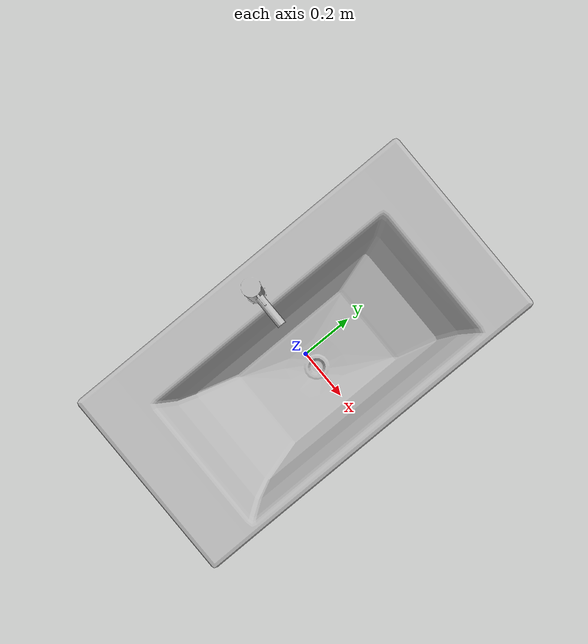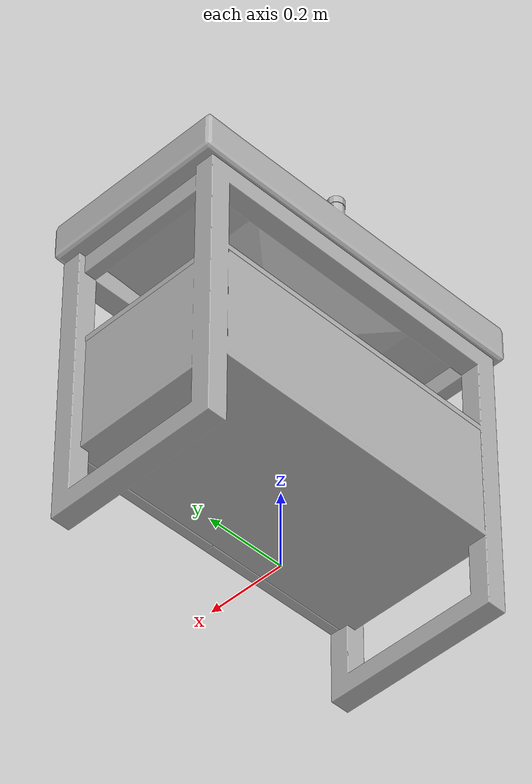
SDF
<?xml version='1.0'?>
<sdf version='1.4'>
  <model name='87'>
    <pose>0 0 0 0 0 0</pose>
    <static>true</static>
    <link name='link'>
      <collision name='collision'>
        <pose>0 0 0 0 0 0</pose>
        <geometry>
          <box>
            <size>0.470595 0.900102 2</size>
          </box>
        </geometry>
      </collision>
      <visual name='visual'>
        <pose>0 0 0 0 0 0</pose>
        <geometry>
          <mesh><uri>model://87/87.dae</uri></mesh>
        </geometry>
      </visual>
    </link>
  </model>
</sdf>
